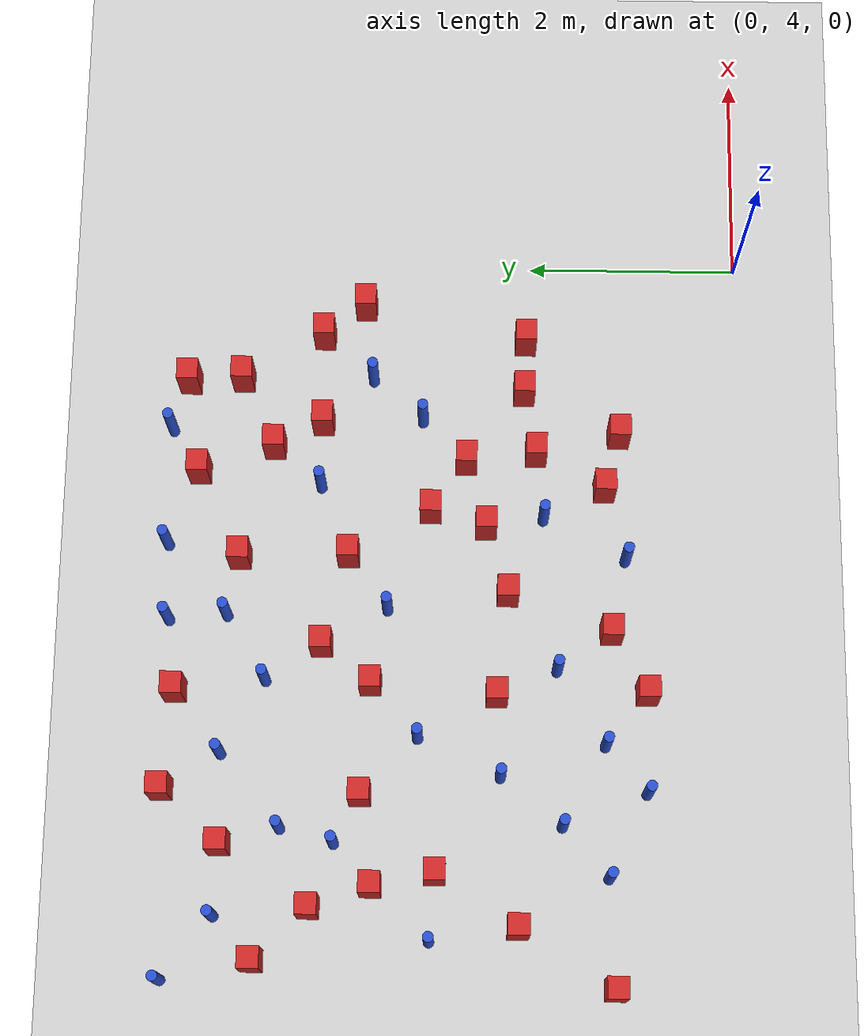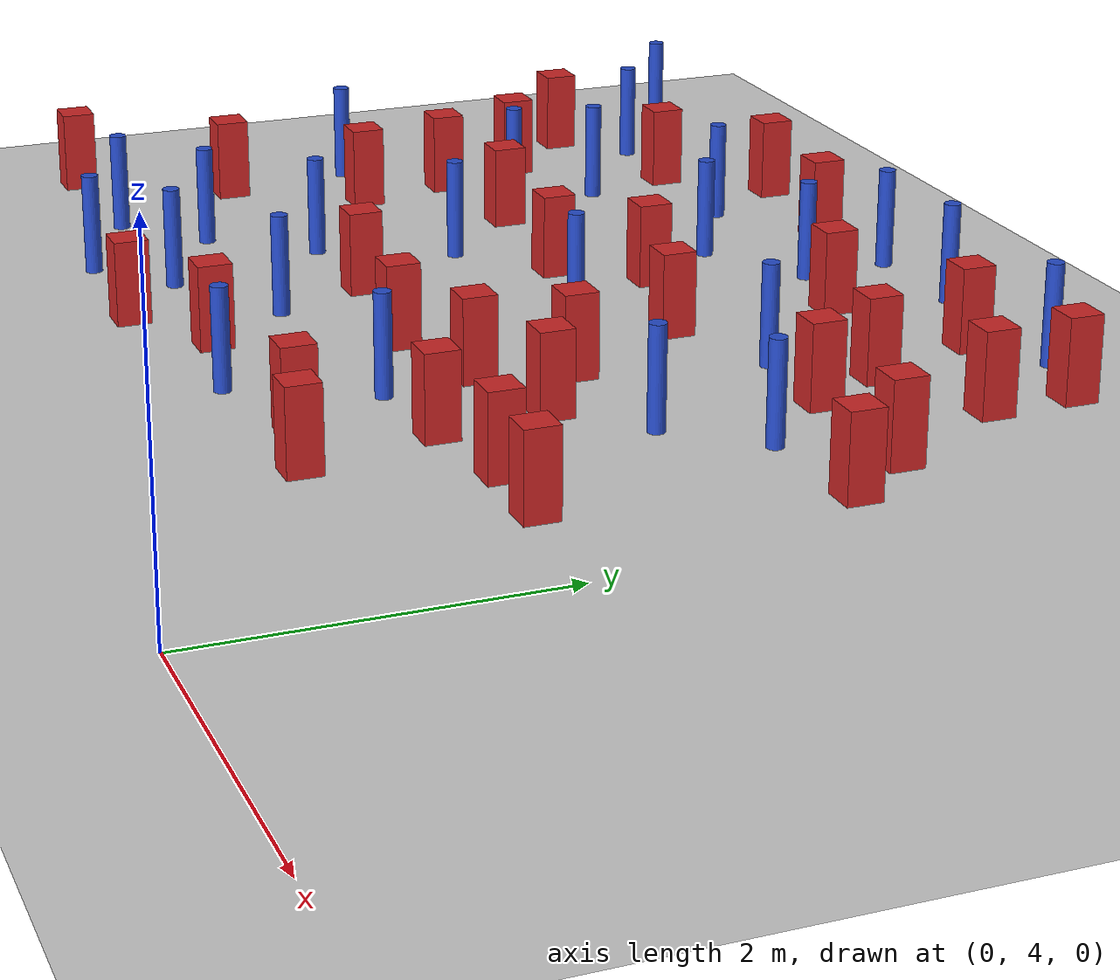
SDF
<sdf version="1.6">
 <world name="default">
  <model name="ground_plane">
   <static>1</static>
   <link name="link">
    <collision name="collision">
     <geometry><plane><normal>0 0 1</normal><size>100 100</size></plane></geometry>
     <surface><friction><ode><mu>100</mu><mu2>50</mu2></ode></friction></surface>
    </collision>
    <visual name="visual">
     <cast_shadows>0</cast_shadows>
     <geometry><plane><normal>0 0 1</normal><size>100 100</size></plane></geometry>
     <material>
      <ambient>1.0 1.0 1.0 1.0</ambient>
      <diffuse>0.8 0.8 0.8 1.0</diffuse>
      <specular>0.01 0.01 0.01 1.000000</specular>
     </material>
    </visual>
   </link>
  </model>
  <model name="pole_obstacle4">
   <static>true</static>
   <pose>-2.95678974515 5.09127910285 -9.47619616065e-06 5.49618799738e-07 2.3631041406e-07 -1.55090534801e-07</pose>
   <link name="link">
    <pose>0 0 0.3 0 -0 0</pose>
    <inertial>
     <mass>1</mass>
     <inertia><ixx>0.145833</ixx><ixy>0</ixy><ixz>0</ixz><iyy>0.145833</iyy><iyz>0</iyz><izz>0.125</izz></inertia>
    </inertial>
    <collision name="collision">
     <geometry><cylinder><radius>0.05</radius><length>.6</length></cylinder></geometry>
    </collision>
    <visual name="visual">
     <geometry><cylinder><radius>0.05</radius><length>.6</length></cylinder></geometry>
     <material>
      <script><name>Gazebo/Blue</name><uri>file://media/materials/scripts/gazebo.material</uri></script>
     </material>
    </visual>
   </link>
  </model>
  <model name="square_post_obstacle3">
   <static>true</static>
   <pose>-3.80728413386 7.94259799385 -6.11067671241e-07 -5.50515727128e-06 -8.79689657224e-07 2.37013304536e-05</pose>
   <link name="link">
    <pose>0 0 0.25 0 -0 0</pose>
    <inertial>
     <mass>100</mass>
     <inertia>
      <ixx>0.166667</ixx>
      <ixy>0</ixy>
      <ixz>0</ixz>
      <iyy>0.166667</iyy>
      <iyz>0</iyz>
      <izz>0.166667</izz>
     </inertia>
    </inertial>
    <collision name="collision"><geometry><box><size>.2 .2 .5</size></box></geometry></collision>
    <visual name="visual">
     <geometry><box><size>.2 .2 .5</size></box></geometry>
     <material>
      <script><name>Gazebo/Red</name><uri>file://media/materials/scripts/gazebo.material</uri></script>
     </material>
    </visual>
   </link>
  </model>
  <model name="square_post_obstacle6">
   <static>true</static>
   <pose>-0.790783355367 6.04530194264 -6.11067671241e-07 -5.50515727128e-06 -8.79689657224e-07 2.37013304536e-05</pose>
   <link name="link">
    <pose>0 0 0.25 0 -0 0</pose>
    <inertial>
     <mass>100</mass>
     <inertia>
      <ixx>0.166667</ixx>
      <ixy>0</ixy>
      <ixz>0</ixz>
      <iyy>0.166667</iyy>
      <iyz>0</iyz>
      <izz>0.166667</izz>
     </inertia>
    </inertial>
    <collision name="collision"><geometry><box><size>.2 .2 .5</size></box></geometry></collision>
    <visual name="visual">
     <geometry><box><size>.2 .2 .5</size></box></geometry>
     <material>
      <script><name>Gazebo/Red</name><uri>file://media/materials/scripts/gazebo.material</uri></script>
     </material>
    </visual>
   </link>
  </model>
  <model name="square_post_obstacle9">
   <static>true</static>
   <pose>-1.1920065152 8.7605117663 -6.11067671241e-07 -5.50515727128e-06 -8.79689657224e-07 2.37013304536e-05</pose>
   <link name="link">
    <pose>0 0 0.25 0 -0 0</pose>
    <inertial>
     <mass>100</mass>
     <inertia>
      <ixx>0.166667</ixx>
      <ixy>0</ixy>
      <ixz>0</ixz>
      <iyy>0.166667</iyy>
      <iyz>0</iyz>
      <izz>0.166667</izz>
     </inertia>
    </inertial>
    <collision name="collision"><geometry><box><size>.2 .2 .5</size></box></geometry></collision>
    <visual name="visual">
     <geometry><box><size>.2 .2 .5</size></box></geometry>
     <material>
      <script><name>Gazebo/Red</name><uri>file://media/materials/scripts/gazebo.material</uri></script>
     </material>
    </visual>
   </link>
  </model>
  <model name="pole_obstacle13">
   <static>true</static>
   <pose>-6.89911833918 9.32958640942 -9.47619616065e-06 5.49618799737e-07 2.36310414065e-07 -1.55090534796e-07</pose>
   <link name="link">
    <pose>0 0 0.3 0 -0 0</pose>
    <inertial>
     <mass>1</mass>
     <inertia><ixx>0.145833</ixx><ixy>0</ixy><ixz>0</ixz><iyy>0.145833</iyy><iyz>0</iyz><izz>0.125</izz></inertia>
    </inertial>
    <collision name="collision">
     <geometry><cylinder><radius>0.05</radius><length>.6</length></cylinder></geometry>
    </collision>
    <visual name="visual">
     <geometry><cylinder><radius>0.05</radius><length>.6</length></cylinder></geometry>
     <material>
      <script><name>Gazebo/Blue</name><uri>file://media/materials/scripts/gazebo.material</uri></script>
     </material>
    </visual>
   </link>
  </model>
  <model name="square_post_obstacle12">
   <static>true</static>
   <pose>-1.2192091242 9.27481414858 -6.11067671241e-07 -5.50515727128e-06 -8.79689657224e-07 2.37013304536e-05</pose>
   <link name="link">
    <pose>0 0 0.25 0 -0 0</pose>
    <inertial>
     <mass>100</mass>
     <inertia>
      <ixx>0.166667</ixx>
      <ixy>0</ixy>
      <ixz>0</ixz>
      <iyy>0.166667</iyy>
      <iyz>0</iyz>
      <izz>0.166667</izz>
     </inertia>
    </inertial>
    <collision name="collision"><geometry><box><size>.2 .2 .5</size></box></geometry></collision>
    <visual name="visual">
     <geometry><box><size>.2 .2 .5</size></box></geometry>
     <material>
      <script><name>Gazebo/Red</name><uri>file://media/materials/scripts/gazebo.material</uri></script>
     </material>
    </visual>
   </link>
  </model>
  <model name="square_post_obstacle13">
   <static>true</static>
   <pose>-1.86878175592 8.4378977359 -6.11067671241e-07 -5.50515727128e-06 -8.79689657224e-07 2.37013304536e-05</pose>
   <link name="link">
    <pose>0 0 0.25 0 -0 0</pose>
    <inertial>
     <mass>100</mass>
     <inertia>
      <ixx>0.166667</ixx>
      <ixy>0</ixy>
      <ixz>0</ixz>
      <iyy>0.166667</iyy>
      <iyz>0</iyz>
      <izz>0.166667</izz>
     </inertia>
    </inertial>
    <collision name="collision"><geometry><box><size>.2 .2 .5</size></box></geometry></collision>
    <visual name="visual">
     <geometry><box><size>.2 .2 .5</size></box></geometry>
     <material>
      <script><name>Gazebo/Red</name><uri>file://media/materials/scripts/gazebo.material</uri></script>
     </material>
    </visual>
   </link>
  </model>
  <model name="pole_obstacle25">
   <static>true</static>
   <pose>-5.52420104333 8.28880063008 -9.47619616065e-06 5.49618799737e-07 2.36310414065e-07 -1.55090534796e-07</pose>
   <link name="link">
    <pose>0 0 0.3 0 -0 0</pose>
    <inertial>
     <mass>1</mass>
     <inertia><ixx>0.145833</ixx><ixy>0</ixy><ixz>0</ixz><iyy>0.145833</iyy><iyz>0</iyz><izz>0.125</izz></inertia>
    </inertial>
    <collision name="collision">
     <geometry><cylinder><radius>0.05</radius><length>.6</length></cylinder></geometry>
    </collision>
    <visual name="visual">
     <geometry><cylinder><radius>0.05</radius><length>.6</length></cylinder></geometry>
     <material>
      <script><name>Gazebo/Blue</name><uri>file://media/materials/scripts/gazebo.material</uri></script>
     </material>
    </visual>
   </link>
  </model>
  <model name="pole_obstacle26">
   <static>true</static>
   <pose>-4.14554308568 8.46213966443 -9.47619616065e-06 5.49618799737e-07 2.36310414065e-07 -1.55090534796e-07</pose>
   <link name="link">
    <pose>0 0 0.3 0 -0 0</pose>
    <inertial>
     <mass>1</mass>
     <inertia><ixx>0.145833</ixx><ixy>0</ixy><ixz>0</ixz><iyy>0.145833</iyy><iyz>0</iyz><izz>0.125</izz></inertia>
    </inertial>
    <collision name="collision">
     <geometry><cylinder><radius>0.05</radius><length>.6</length></cylinder></geometry>
    </collision>
    <visual name="visual">
     <geometry><cylinder><radius>0.05</radius><length>.6</length></cylinder></geometry>
     <material>
      <script><name>Gazebo/Blue</name><uri>file://media/materials/scripts/gazebo.material</uri></script>
     </material>
    </visual>
   </link>
  </model>
  <model name="square_post_obstacle26">
   <static>true</static>
   <pose>-2.9379293906 7.70924358474 -6.11067671241e-07 -5.50515727128e-06 -8.79689657224e-07 2.37013304536e-05</pose>
   <link name="link">
    <pose>0 0 0.25 0 -0 0</pose>
    <inertial>
     <mass>100</mass>
     <inertia>
      <ixx>0.166667</ixx>
      <ixy>0</ixy>
      <ixz>0</ixz>
      <iyy>0.166667</iyy>
      <iyz>0</iyz>
      <izz>0.166667</izz>
     </inertia>
    </inertial>
    <collision name="collision"><geometry><box><size>.2 .2 .5</size></box></geometry></collision>
    <visual name="visual">
     <geometry><box><size>.2 .2 .5</size></box></geometry>
     <material>
      <script><name>Gazebo/Red</name><uri>file://media/materials/scripts/gazebo.material</uri></script>
     </material>
    </visual>
   </link>
  </model>
  <model name="square_post_obstacle29">
   <static>true</static>
   <pose>-2.49597497008 6.94060010637 -6.11067671241e-07 -5.50515727128e-06 -8.79689657224e-07 2.37013304536e-05</pose>
   <link name="link">
    <pose>0 0 0.25 0 -0 0</pose>
    <inertial>
     <mass>100</mass>
     <inertia>
      <ixx>0.166667</ixx>
      <ixy>0</ixy>
      <ixz>0</ixz>
      <iyy>0.166667</iyy>
      <iyz>0</iyz>
      <izz>0.166667</izz>
     </inertia>
    </inertial>
    <collision name="collision"><geometry><box><size>.2 .2 .5</size></box></geometry></collision>
    <visual name="visual">
     <geometry><box><size>.2 .2 .5</size></box></geometry>
     <material>
      <script><name>Gazebo/Red</name><uri>file://media/materials/scripts/gazebo.material</uri></script>
     </material>
    </visual>
   </link>
  </model>
  <model name="square_post_obstacle30">
   <static>true</static>
   <pose>-4.2704340023 6.30288569677 -6.11067671241e-07 -5.50515727128e-06 -8.79689657224e-07 2.37013304536e-05</pose>
   <link name="link">
    <pose>0 0 0.25 0 -0 0</pose>
    <inertial>
     <mass>100</mass>
     <inertia>
      <ixx>0.166667</ixx>
      <ixy>0</ixy>
      <ixz>0</ixz>
      <iyy>0.166667</iyy>
      <iyz>0</iyz>
      <izz>0.166667</izz>
     </inertia>
    </inertial>
    <collision name="collision"><geometry><box><size>.2 .2 .5</size></box></geometry></collision>
    <visual name="visual">
     <geometry><box><size>.2 .2 .5</size></box></geometry>
     <material>
      <script><name>Gazebo/Red</name><uri>file://media/materials/scripts/gazebo.material</uri></script>
     </material>
    </visual>
   </link>
  </model>
  <model name="pole_obstacle45">
   <static>true</static>
   <pose>-2.5598574626 5.86908741282 -9.47619616065e-06 5.49618799738e-07 2.3631041406e-07 -1.55090534801e-07</pose>
   <link name="link">
    <pose>0 0 0.3 0 -0 0</pose>
    <inertial>
     <mass>1</mass>
     <inertia><ixx>0.145833</ixx><ixy>0</ixy><ixz>0</ixz><iyy>0.145833</iyy><iyz>0</iyz><izz>0.125</izz></inertia>
    </inertial>
    <collision name="collision">
     <geometry><cylinder><radius>0.05</radius><length>.6</length></cylinder></geometry>
    </collision>
    <visual name="visual">
     <geometry><cylinder><radius>0.05</radius><length>.6</length></cylinder></geometry>
     <material>
      <script><name>Gazebo/Blue</name><uri>file://media/materials/scripts/gazebo.material</uri></script>
     </material>
    </visual>
   </link>
  </model>
  <model name="pole_obstacle46">
   <static>true</static>
   <pose>-5.948123673 5.26183537463 -9.47619616065e-06 5.49618799737e-07 2.36310414037e-07 -1.55090534814e-07</pose>
   <link name="link">
    <pose>0 0 0.3 0 -0 0</pose>
    <inertial>
     <mass>1</mass>
     <inertia><ixx>0.145833</ixx><ixy>0</ixy><ixz>0</ixz><iyy>0.145833</iyy><iyz>0</iyz><izz>0.125</izz></inertia>
    </inertial>
    <collision name="collision">
     <geometry><cylinder><radius>0.05</radius><length>.6</length></cylinder></geometry>
    </collision>
    <visual name="visual">
     <geometry><cylinder><radius>0.05</radius><length>.6</length></cylinder></geometry>
     <material>
      <script><name>Gazebo/Blue</name><uri>file://media/materials/scripts/gazebo.material</uri></script>
     </material>
    </visual>
   </link>
  </model>
  <model name="square_post_obstacle44">
   <static>true</static>
   <pose>-4.17164430391 7.47755514441 -6.11067671241e-07 -5.50515727128e-06 -8.79689657224e-07 2.37013304536e-05</pose>
   <link name="link">
    <pose>0 0 0.25 0 -0 0</pose>
    <inertial>
     <mass>100</mass>
     <inertia>
      <ixx>0.166667</ixx>
      <ixy>0</ixy>
      <ixz>0</ixz>
      <iyy>0.166667</iyy>
      <iyz>0</iyz>
      <izz>0.166667</izz>
     </inertia>
    </inertial>
    <collision name="collision"><geometry><box><size>.2 .2 .5</size></box></geometry></collision>
    <visual name="visual">
     <geometry><box><size>.2 .2 .5</size></box></geometry>
     <material>
      <script><name>Gazebo/Red</name><uri>file://media/materials/scripts/gazebo.material</uri></script>
     </material>
    </visual>
   </link>
  </model>
  <model name="square_post_obstacle47">
   <static>true</static>
   <pose>-3.66276954024 5.23246581535 -6.11067671241e-07 -5.50515727128e-06 -8.79689657224e-07 2.37013304536e-05</pose>
   <link name="link">
    <pose>0 0 0.25 0 -0 0</pose>
    <inertial>
     <mass>100</mass>
     <inertia>
      <ixx>0.166667</ixx>
      <ixy>0</ixy>
      <ixz>0</ixz>
      <iyy>0.166667</iyy>
      <iyz>0</iyz>
      <izz>0.166667</izz>
     </inertia>
    </inertial>
    <collision name="collision"><geometry><box><size>.2 .2 .5</size></box></geometry></collision>
    <visual name="visual">
     <geometry><box><size>.2 .2 .5</size></box></geometry>
     <material>
      <script><name>Gazebo/Red</name><uri>file://media/materials/scripts/gazebo.material</uri></script>
     </material>
    </visual>
   </link>
  </model>
  <model name="pole_obstacle67">
   <static>true</static>
   <pose>-5.0302400301 6.26273272786 -9.47619616065e-06 5.49618799737e-07 2.36310414037e-07 -1.55090534814e-07</pose>
   <link name="link">
    <pose>0 0 0.3 0 -0 0</pose>
    <inertial>
     <mass>1</mass>
     <inertia><ixx>0.145833</ixx><ixy>0</ixy><ixz>0</ixz><iyy>0.145833</iyy><iyz>0</iyz><izz>0.125</izz></inertia>
    </inertial>
    <collision name="collision">
     <geometry><cylinder><radius>0.05</radius><length>.6</length></cylinder></geometry>
    </collision>
    <visual name="visual">
     <geometry><cylinder><radius>0.05</radius><length>.6</length></cylinder></geometry>
     <material>
      <script><name>Gazebo/Blue</name><uri>file://media/materials/scripts/gazebo.material</uri></script>
     </material>
    </visual>
   </link>
  </model>
  <model name="square_post_obstacle54">
   <static>true</static>
   <pose>-4.24011028568 4.90246162538 -6.11067671241e-07 -5.50515727128e-06 -8.79689657224e-07 2.37013304536e-05</pose>
   <link name="link">
    <pose>0 0 0.25 0 -0 0</pose>
    <inertial>
     <mass>100</mass>
     <inertia>
      <ixx>0.166667</ixx>
      <ixy>0</ixy>
      <ixz>0</ixz>
      <iyy>0.166667</iyy>
      <iyz>0</iyz>
      <izz>0.166667</izz>
     </inertia>
    </inertial>
    <collision name="collision"><geometry><box><size>.2 .2 .5</size></box></geometry></collision>
    <visual name="visual">
     <geometry><box><size>.2 .2 .5</size></box></geometry>
     <material>
      <script><name>Gazebo/Red</name><uri>file://media/materials/scripts/gazebo.material</uri></script>
     </material>
    </visual>
   </link>
  </model>
  <model name="square_post_obstacle55">
   <static>true</static>
   <pose>-3.30167242402 6.20507008597 -6.11067671241e-07 -5.50515727128e-06 -8.79689657224e-07 2.37013304536e-05</pose>
   <link name="link">
    <pose>0 0 0.25 0 -0 0</pose>
    <inertial>
     <mass>100</mass>
     <inertia>
      <ixx>0.166667</ixx>
      <ixy>0</ixy>
      <ixz>0</ixz>
      <iyy>0.166667</iyy>
      <iyz>0</iyz>
      <izz>0.166667</izz>
     </inertia>
    </inertial>
    <collision name="collision"><geometry><box><size>.2 .2 .5</size></box></geometry></collision>
    <visual name="visual">
     <geometry><box><size>.2 .2 .5</size></box></geometry>
     <material>
      <script><name>Gazebo/Red</name><uri>file://media/materials/scripts/gazebo.material</uri></script>
     </material>
    </visual>
   </link>
  </model>
  <model name="pole_obstacle70">
   <static>true</static>
   <pose>-1.58702367289 7.0253785413 -9.47619616065e-06 5.49618799737e-07 2.36310414061e-07 -1.550905348e-07</pose>
   <link name="link">
    <pose>0 0 0.3 0 -0 0</pose>
    <inertial>
     <mass>1</mass>
     <inertia><ixx>0.145833</ixx><ixy>0</ixy><ixz>0</ixz><iyy>0.145833</iyy><iyz>0</iyz><izz>0.125</izz></inertia>
    </inertial>
    <collision name="collision">
     <geometry><cylinder><radius>0.05</radius><length>.6</length></cylinder></geometry>
    </collision>
    <visual name="visual">
     <geometry><cylinder><radius>0.05</radius><length>.6</length></cylinder></geometry>
     <material>
      <script><name>Gazebo/Blue</name><uri>file://media/materials/scripts/gazebo.material</uri></script>
     </material>
    </visual>
   </link>
  </model>
  <model name="square_post_obstacle62">
   <static>true</static>
   <pose>-6.72022329047 8.50379124047 -6.11067671241e-07 -5.50515727128e-06 -8.79689657224e-07 2.37013304536e-05</pose>
   <link name="link">
    <pose>0 0 0.25 0 -0 0</pose>
    <inertial>
     <mass>100</mass>
     <inertia>
      <ixx>0.166667</ixx>
      <ixy>0</ixy>
      <ixz>0</ixz>
      <iyy>0.166667</iyy>
      <iyz>0</iyz>
      <izz>0.166667</izz>
     </inertia>
    </inertial>
    <collision name="collision"><geometry><box><size>.2 .2 .5</size></box></geometry></collision>
    <visual name="visual">
     <geometry><box><size>.2 .2 .5</size></box></geometry>
     <material>
      <script><name>Gazebo/Red</name><uri>file://media/materials/scripts/gazebo.material</uri></script>
     </material>
    </visual>
   </link>
  </model>
  <model name="pole_obstacle77">
   <static>true</static>
   <pose>-5.1717194851 4.90552400856 -9.47619616065e-06 5.49618799737e-07 2.36310414037e-07 -1.55090534814e-07</pose>
   <link name="link">
    <pose>0 0 0.3 0 -0 0</pose>
    <inertial>
     <mass>1</mass>
     <inertia><ixx>0.145833</ixx><ixy>0</ixy><ixz>0</ixz><iyy>0.145833</iyy><iyz>0</iyz><izz>0.125</izz></inertia>
    </inertial>
    <collision name="collision">
     <geometry><cylinder><radius>0.05</radius><length>.6</length></cylinder></geometry>
    </collision>
    <visual name="visual">
     <geometry><cylinder><radius>0.05</radius><length>.6</length></cylinder></geometry>
     <material>
      <script><name>Gazebo/Blue</name><uri>file://media/materials/scripts/gazebo.material</uri></script>
     </material>
    </visual>
   </link>
  </model>
  <model name="square_post_obstacle71">
   <static>true</static>
   <pose>-0.749302874879 7.98670595405 -6.11067671241e-07 -5.50515727128e-06 -8.79689657224e-07 2.37013304536e-05</pose>
   <link name="link">
    <pose>0 0 0.25 0 -0 0</pose>
    <inertial>
     <mass>100</mass>
     <inertia>
      <ixx>0.166667</ixx>
      <ixy>0</ixy>
      <ixz>0</ixz>
      <iyy>0.166667</iyy>
      <iyz>0</iyz>
      <izz>0.166667</izz>
     </inertia>
    </inertial>
    <collision name="collision"><geometry><box><size>.2 .2 .5</size></box></geometry></collision>
    <visual name="visual">
     <geometry><box><size>.2 .2 .5</size></box></geometry>
     <material>
      <script><name>Gazebo/Red</name><uri>file://media/materials/scripts/gazebo.material</uri></script>
     </material>
    </visual>
   </link>
  </model>
  <model name="pole_obstacle85">
   <static>true</static>
   <pose>-4.02636909091 5.73742661564 -9.47619616065e-06 5.49618799737e-07 2.36310414031e-07 -1.55090534817e-07</pose>
   <link name="link">
    <pose>0 0 0.3 0 -0 0</pose>
    <inertial>
     <mass>1</mass>
     <inertia><ixx>0.145833</ixx><ixy>0</ixy><ixz>0</ixz><iyy>0.145833</iyy><iyz>0</iyz><izz>0.125</izz></inertia>
    </inertial>
    <collision name="collision">
     <geometry><cylinder><radius>0.05</radius><length>.6</length></cylinder></geometry>
    </collision>
    <visual name="visual">
     <geometry><cylinder><radius>0.05</radius><length>.6</length></cylinder></geometry>
     <material>
      <script><name>Gazebo/Blue</name><uri>file://media/materials/scripts/gazebo.material</uri></script>
     </material>
    </visual>
   </link>
  </model>
  <model name="square_post_obstacle73">
   <static>true</static>
   <pose>-5.20818254517 7.55639027175 -6.11067671241e-07 -5.50515727128e-06 -8.79689657224e-07 2.37013304536e-05</pose>
   <link name="link">
    <pose>0 0 0.25 0 -0 0</pose>
    <inertial>
     <mass>100</mass>
     <inertia>
      <ixx>0.166667</ixx>
      <ixy>0</ixy>
      <ixz>0</ixz>
      <iyy>0.166667</iyy>
      <iyz>0</iyz>
      <izz>0.166667</izz>
     </inertia>
    </inertial>
    <collision name="collision"><geometry><box><size>.2 .2 .5</size></box></geometry></collision>
    <visual name="visual">
     <geometry><box><size>.2 .2 .5</size></box></geometry>
     <material>
      <script><name>Gazebo/Red</name><uri>file://media/materials/scripts/gazebo.material</uri></script>
     </material>
    </visual>
   </link>
  </model>
  <model name="pole_obstacle88">
   <static>true</static>
   <pose>-4.73186308262 5.28888205395 -9.47619616065e-06 5.49618799737e-07 2.36310414037e-07 -1.55090534814e-07</pose>
   <link name="link">
    <pose>0 0 0.3 0 -0 0</pose>
    <inertial>
     <mass>1</mass>
     <inertia><ixx>0.145833</ixx><ixy>0</ixy><ixz>0</ixz><iyy>0.145833</iyy><iyz>0</iyz><izz>0.125</izz></inertia>
    </inertial>
    <collision name="collision">
     <geometry><cylinder><radius>0.05</radius><length>.6</length></cylinder></geometry>
    </collision>
    <visual name="visual">
     <geometry><cylinder><radius>0.05</radius><length>.6</length></cylinder></geometry>
     <material>
      <script><name>Gazebo/Blue</name><uri>file://media/materials/scripts/gazebo.material</uri></script>
     </material>
    </visual>
   </link>
  </model>
  <model name="square_post_obstacle75">
   <static>true</static>
   <pose>-4.25066289263 9.29894668579 -6.11067671241e-07 -5.50515727128e-06 -8.79689657224e-07 2.37013304536e-05</pose>
   <link name="link">
    <pose>0 0 0.25 0 -0 0</pose>
    <inertial>
     <mass>100</mass>
     <inertia>
      <ixx>0.166667</ixx>
      <ixy>0</ixy>
      <ixz>0</ixz>
      <iyy>0.166667</iyy>
      <iyz>0</iyz>
      <izz>0.166667</izz>
     </inertia>
    </inertial>
    <collision name="collision"><geometry><box><size>.2 .2 .5</size></box></geometry></collision>
    <visual name="visual">
     <geometry><box><size>.2 .2 .5</size></box></geometry>
     <material>
      <script><name>Gazebo/Red</name><uri>file://media/materials/scripts/gazebo.material</uri></script>
     </material>
    </visual>
   </link>
  </model>
  <model name="square_post_obstacle85">
   <static>true</static>
   <pose>-6.40384454887 6.09656698712 -6.11067671241e-07 -5.50515727128e-06 -8.79689657224e-07 2.37013304536e-05</pose>
   <link name="link">
    <pose>0 0 0.25 0 -0 0</pose>
    <inertial>
     <mass>100</mass>
     <inertia>
      <ixx>0.166667</ixx>
      <ixy>0</ixy>
      <ixz>0</ixz>
      <iyy>0.166667</iyy>
      <iyz>0</iyz>
      <izz>0.166667</izz>
     </inertia>
    </inertial>
    <collision name="collision"><geometry><box><size>.2 .2 .5</size></box></geometry></collision>
    <visual name="visual">
     <geometry><box><size>.2 .2 .5</size></box></geometry>
     <material>
      <script><name>Gazebo/Red</name><uri>file://media/materials/scripts/gazebo.material</uri></script>
     </material>
    </visual>
   </link>
  </model>
  <model name="pole_obstacle98">
   <static>true</static>
   <pose>-4.83721915752 8.85783787546 -9.47619616065e-06 5.49618799737e-07 2.36310414065e-07 -1.55090534796e-07</pose>
   <link name="link">
    <pose>0 0 0.3 0 -0 0</pose>
    <inertial>
     <mass>1</mass>
     <inertia><ixx>0.145833</ixx><ixy>0</ixy><ixz>0</ixz><iyy>0.145833</iyy><iyz>0</iyz><izz>0.125</izz></inertia>
    </inertial>
    <collision name="collision">
     <geometry><cylinder><radius>0.05</radius><length>.6</length></cylinder></geometry>
    </collision>
    <visual name="visual">
     <geometry><cylinder><radius>0.05</radius><length>.6</length></cylinder></geometry>
     <material>
      <script><name>Gazebo/Blue</name><uri>file://media/materials/scripts/gazebo.material</uri></script>
     </material>
    </visual>
   </link>
  </model>
  <model name="square_post_obstacle93">
   <static>true</static>
   <pose>-2.96652013217 8.73398334853 -6.11067671241e-07 -5.50515727128e-06 -8.79689657224e-07 2.37013304536e-05</pose>
   <link name="link">
    <pose>0 0 0.25 0 -0 0</pose>
    <inertial>
     <mass>100</mass>
     <inertia>
      <ixx>0.166667</ixx>
      <ixy>0</ixy>
      <ixz>0</ixz>
      <iyy>0.166667</iyy>
      <iyz>0</iyz>
      <izz>0.166667</izz>
     </inertia>
    </inertial>
    <collision name="collision"><geometry><box><size>.2 .2 .5</size></box></geometry></collision>
    <visual name="visual">
     <geometry><box><size>.2 .2 .5</size></box></geometry>
     <material>
      <script><name>Gazebo/Red</name><uri>file://media/materials/scripts/gazebo.material</uri></script>
     </material>
    </visual>
   </link>
  </model>
  <model name="pole_obstacle105">
   <static>true</static>
   <pose>-3.52545761373 8.84153467018 -9.4761961606e-06 5.49618799729e-07 2.36310414e-07 -1.55090534824e-07</pose>
   <link name="link">
    <pose>0 0 0.3 0 -0 0</pose>
    <inertial>
     <mass>1</mass>
     <inertia><ixx>0.145833</ixx><ixy>0</ixy><ixz>0</ixz><iyy>0.145833</iyy><iyz>0</iyz><izz>0.125</izz></inertia>
    </inertial>
    <collision name="collision">
     <geometry><cylinder><radius>0.05</radius><length>.6</length></cylinder></geometry>
    </collision>
    <visual name="visual">
     <geometry><cylinder><radius>0.05</radius><length>.6</length></cylinder></geometry>
     <material>
      <script><name>Gazebo/Blue</name><uri>file://media/materials/scripts/gazebo.material</uri></script>
     </material>
    </visual>
   </link>
  </model>
  <model name="square_post_obstacle126">
   <static>true</static>
   <pose>-5.67208714138 8.83822857951 -6.11067671241e-07 -5.50515727128e-06 -8.79689657224e-07 2.37013304536e-05</pose>
   <link name="link">
    <pose>0 0 0.25 0 -0 0</pose>
    <inertial>
     <mass>100</mass>
     <inertia>
      <ixx>0.166667</ixx>
      <ixy>0</ixy>
      <ixz>0</ixz>
      <iyy>0.166667</iyy>
      <iyz>0</iyz>
      <izz>0.166667</izz>
     </inertia>
    </inertial>
    <collision name="collision"><geometry><box><size>.2 .2 .5</size></box></geometry></collision>
    <visual name="visual">
     <geometry><box><size>.2 .2 .5</size></box></geometry>
     <material>
      <script><name>Gazebo/Red</name><uri>file://media/materials/scripts/gazebo.material</uri></script>
     </material>
    </visual>
   </link>
  </model>
  <model name="square_post_obstacle131">
   <static>true</static>
   <pose>-1.30971597523 6.05829694783 -6.11067671241e-07 -5.50515727128e-06 -8.79689657224e-07 2.37013304536e-05</pose>
   <link name="link">
    <pose>0 0 0.25 0 -0 0</pose>
    <inertial>
     <mass>100</mass>
     <inertia>
      <ixx>0.166667</ixx>
      <ixy>0</ixy>
      <ixz>0</ixz>
      <iyy>0.166667</iyy>
      <iyz>0</iyz>
      <izz>0.166667</izz>
     </inertia>
    </inertial>
    <collision name="collision"><geometry><box><size>.2 .2 .5</size></box></geometry></collision>
    <visual name="visual">
     <geometry><box><size>.2 .2 .5</size></box></geometry>
     <material>
      <script><name>Gazebo/Red</name><uri>file://media/materials/scripts/gazebo.material</uri></script>
     </material>
    </visual>
   </link>
  </model>
  <model name="pole_obstacle141">
   <static>true</static>
   <pose>-6.53538616235 6.90499154375 -9.47619616065e-06 5.49618799737e-07 2.36310414037e-07 -1.55090534814e-07</pose>
   <link name="link">
    <pose>0 0 0.3 0 -0 0</pose>
    <inertial>
     <mass>1</mass>
     <inertia><ixx>0.145833</ixx><ixy>0</ixy><ixz>0</ixz><iyy>0.145833</iyy><iyz>0</iyz><izz>0.125</izz></inertia>
    </inertial>
    <collision name="collision">
     <geometry><cylinder><radius>0.05</radius><length>.6</length></cylinder></geometry>
    </collision>
    <visual name="visual">
     <geometry><cylinder><radius>0.05</radius><length>.6</length></cylinder></geometry>
     <material>
      <script><name>Gazebo/Blue</name><uri>file://media/materials/scripts/gazebo.material</uri></script>
     </material>
    </visual>
   </link>
  </model>
  <model name="pole_obstacle148">
   <static>true</static>
   <pose>-3.45529429385 7.33300449355 -9.47619616065e-06 5.49618799738e-07 2.3631041406e-07 -1.55090534801e-07</pose>
   <link name="link">
    <pose>0 0 0.3 0 -0 0</pose>
    <inertial>
     <mass>1</mass>
     <inertia><ixx>0.145833</ixx><ixy>0</ixy><ixz>0</ixz><iyy>0.145833</iyy><iyz>0</iyz><izz>0.125</izz></inertia>
    </inertial>
    <collision name="collision">
     <geometry><cylinder><radius>0.05</radius><length>.6</length></cylinder></geometry>
    </collision>
    <visual name="visual">
     <geometry><cylinder><radius>0.05</radius><length>.6</length></cylinder></geometry>
     <material>
      <script><name>Gazebo/Blue</name><uri>file://media/materials/scripts/gazebo.material</uri></script>
     </material>
    </visual>
   </link>
  </model>
  <model name="square_post_obstacle149">
   <static>true</static>
   <pose>-5.92113306008 6.85758101392 -6.11067671241e-07 -5.50515727128e-06 -8.79689657224e-07 2.37013304536e-05</pose>
   <link name="link">
    <pose>0 0 0.25 0 -0 0</pose>
    <inertial>
     <mass>100</mass>
     <inertia>
      <ixx>0.166667</ixx>
      <ixy>0</ixy>
      <ixz>0</ixz>
      <iyy>0.166667</iyy>
      <iyz>0</iyz>
      <izz>0.166667</izz>
     </inertia>
    </inertial>
    <collision name="collision"><geometry><box><size>.2 .2 .5</size></box></geometry></collision>
    <visual name="visual">
     <geometry><box><size>.2 .2 .5</size></box></geometry>
     <material>
      <script><name>Gazebo/Red</name><uri>file://media/materials/scripts/gazebo.material</uri></script>
     </material>
    </visual>
   </link>
  </model>
  <model name="square_post_obstacle152">
   <static>true</static>
   <pose>-2.26918869211 5.29172515942 -6.11067671241e-07 -5.50515727128e-06 -8.79689657224e-07 2.37013304536e-05</pose>
   <link name="link">
    <pose>0 0 0.25 0 -0 0</pose>
    <inertial>
     <mass>100</mass>
     <inertia>
      <ixx>0.166667</ixx>
      <ixy>0</ixy>
      <ixz>0</ixz>
      <iyy>0.166667</iyy>
      <iyz>0</iyz>
      <izz>0.166667</izz>
     </inertia>
    </inertial>
    <collision name="collision"><geometry><box><size>.2 .2 .5</size></box></geometry></collision>
    <visual name="visual">
     <geometry><box><size>.2 .2 .5</size></box></geometry>
     <material>
      <script><name>Gazebo/Red</name><uri>file://media/materials/scripts/gazebo.material</uri></script>
     </material>
    </visual>
   </link>
  </model>
  <model name="square_post_obstacle159">
   <static>true</static>
   <pose>-1.73235446123 5.15240734635 -6.11067671241e-07 -5.50515727128e-06 -8.79689657224e-07 2.37013304536e-05</pose>
   <link name="link">
    <pose>0 0 0.25 0 -0 0</pose>
    <inertial>
     <mass>100</mass>
     <inertia>
      <ixx>0.166667</ixx>
      <ixy>0</ixy>
      <ixz>0</ixz>
      <iyy>0.166667</iyy>
      <iyz>0</iyz>
      <izz>0.166667</izz>
     </inertia>
    </inertial>
    <collision name="collision"><geometry><box><size>.2 .2 .5</size></box></geometry></collision>
    <visual name="visual">
     <geometry><box><size>.2 .2 .5</size></box></geometry>
     <material>
      <script><name>Gazebo/Red</name><uri>file://media/materials/scripts/gazebo.material</uri></script>
     </material>
    </visual>
   </link>
  </model>
  <model name="pole_obstacle168">
   <static>true</static>
   <pose>-2.84136527079 9.42373996783 -9.4761961606e-06 5.49618799729e-07 2.36310414e-07 -1.55090534824e-07</pose>
   <link name="link">
    <pose>0 0 0.3 0 -0 0</pose>
    <inertial>
     <mass>1</mass>
     <inertia><ixx>0.145833</ixx><ixy>0</ixy><ixz>0</ixz><iyy>0.145833</iyy><iyz>0</iyz><izz>0.125</izz></inertia>
    </inertial>
    <collision name="collision">
     <geometry><cylinder><radius>0.05</radius><length>.6</length></cylinder></geometry>
    </collision>
    <visual name="visual">
     <geometry><cylinder><radius>0.05</radius><length>.6</length></cylinder></geometry>
     <material>
      <script><name>Gazebo/Blue</name><uri>file://media/materials/scripts/gazebo.material</uri></script>
     </material>
    </visual>
   </link>
  </model>
  <model name="square_post_obstacle168">
   <static>true</static>
   <pose>-6.04182691714 7.44375936845 -6.11067671241e-07 -5.50515727128e-06 -8.79689657224e-07 2.37013304536e-05</pose>
   <link name="link">
    <pose>0 0 0.25 0 -0 0</pose>
    <inertial>
     <mass>100</mass>
     <inertia>
      <ixx>0.166667</ixx>
      <ixy>0</ixy>
      <ixz>0</ixz>
      <iyy>0.166667</iyy>
      <iyz>0</iyz>
      <izz>0.166667</izz>
     </inertia>
    </inertial>
    <collision name="collision"><geometry><box><size>.2 .2 .5</size></box></geometry></collision>
    <visual name="visual">
     <geometry><box><size>.2 .2 .5</size></box></geometry>
     <material>
      <script><name>Gazebo/Red</name><uri>file://media/materials/scripts/gazebo.material</uri></script>
     </material>
    </visual>
   </link>
  </model>
  <model name="pole_obstacle173">
   <static>true</static>
   <pose>-1.70341243693 9.42525031591 -9.47619616065e-06 5.49618799737e-07 2.36310414046e-07 -1.55090534809e-07</pose>
   <link name="link">
    <pose>0 0 0.3 0 -0 0</pose>
    <inertial>
     <mass>1</mass>
     <inertia><ixx>0.145833</ixx><ixy>0</ixy><ixz>0</ixz><iyy>0.145833</iyy><iyz>0</iyz><izz>0.125</izz></inertia>
    </inertial>
    <collision name="collision">
     <geometry><cylinder><radius>0.05</radius><length>.6</length></cylinder></geometry>
    </collision>
    <visual name="visual">
     <geometry><cylinder><radius>0.05</radius><length>.6</length></cylinder></geometry>
     <material>
      <script><name>Gazebo/Blue</name><uri>file://media/materials/scripts/gazebo.material</uri></script>
     </material>
    </visual>
   </link>
  </model>
  <model name="pole_obstacle176">
   <static>true</static>
   <pose>-3.57125808558 9.3886093638 -9.4761961606e-06 5.49618799729e-07 2.36310414e-07 -1.55090534824e-07</pose>
   <link name="link">
    <pose>0 0 0.3 0 -0 0</pose>
    <inertial>
     <mass>1</mass>
     <inertia><ixx>0.145833</ixx><ixy>0</ixy><ixz>0</ixz><iyy>0.145833</iyy><iyz>0</iyz><izz>0.125</izz></inertia>
    </inertial>
    <collision name="collision">
     <geometry><cylinder><radius>0.05</radius><length>.6</length></cylinder></geometry>
    </collision>
    <visual name="visual">
     <geometry><cylinder><radius>0.05</radius><length>.6</length></cylinder></geometry>
     <material>
      <script><name>Gazebo/Blue</name><uri>file://media/materials/scripts/gazebo.material</uri></script>
     </material>
    </visual>
   </link>
  </model>
  <model name="square_post_obstacle183">
   <static>true</static>
   <pose>-2.12445000089 9.14708520428 -6.11067671241e-07 -5.50515727128e-06 -8.79689657224e-07 2.37013304536e-05</pose>
   <link name="link">
    <pose>0 0 0.25 0 -0 0</pose>
    <inertial>
     <mass>100</mass>
     <inertia>
      <ixx>0.166667</ixx>
      <ixy>0</ixy>
      <ixz>0</ixz>
      <iyy>0.166667</iyy>
      <iyz>0</iyz>
      <izz>0.166667</izz>
     </inertia>
    </inertial>
    <collision name="collision"><geometry><box><size>.2 .2 .5</size></box></geometry></collision>
    <visual name="visual">
     <geometry><box><size>.2 .2 .5</size></box></geometry>
     <material>
      <script><name>Gazebo/Red</name><uri>file://media/materials/scripts/gazebo.material</uri></script>
     </material>
    </visual>
   </link>
  </model>
  <model name="square_post_obstacle187">
   <static>true</static>
   <pose>-0.443265280389 7.5909883616 -6.11067671241e-07 -5.50515727128e-06 -8.79689657224e-07 2.37013304536e-05</pose>
   <link name="link">
    <pose>0 0 0.25 0 -0 0</pose>
    <inertial>
     <mass>100</mass>
     <inertia>
      <ixx>0.166667</ixx>
      <ixy>0</ixy>
      <ixz>0</ixz>
      <iyy>0.166667</iyy>
      <iyz>0</iyz>
      <izz>0.166667</izz>
     </inertia>
    </inertial>
    <collision name="collision"><geometry><box><size>.2 .2 .5</size></box></geometry></collision>
    <visual name="visual">
     <geometry><box><size>.2 .2 .5</size></box></geometry>
     <material>
      <script><name>Gazebo/Red</name><uri>file://media/materials/scripts/gazebo.material</uri></script>
     </material>
    </visual>
   </link>
  </model>
  <model name="pole_obstacle187">
   <static>true</static>
   <pose>-5.65548887516 7.79090818194 -9.47619616065e-06 5.49618799737e-07 2.36310414037e-07 -1.55090534814e-07</pose>
   <link name="link">
    <pose>0 0 0.3 0 -0 0</pose>
    <inertial>
     <mass>1</mass>
     <inertia><ixx>0.145833</ixx><ixy>0</ixy><ixz>0</ixz><iyy>0.145833</iyy><iyz>0</iyz><izz>0.125</izz></inertia>
    </inertial>
    <collision name="collision">
     <geometry><cylinder><radius>0.05</radius><length>.6</length></cylinder></geometry>
    </collision>
    <visual name="visual">
     <geometry><cylinder><radius>0.05</radius><length>.6</length></cylinder></geometry>
     <material>
      <script><name>Gazebo/Blue</name><uri>file://media/materials/scripts/gazebo.material</uri></script>
     </material>
    </visual>
   </link>
  </model>
  <model name="square_post_obstacle194">
   <static>true</static>
   <pose>-1.62564459942 7.97905977488 -6.11067671241e-07 -5.50515727128e-06 -8.79689657224e-07 2.37013304536e-05</pose>
   <link name="link">
    <pose>0 0 0.25 0 -0 0</pose>
    <inertial>
     <mass>100</mass>
     <inertia>
      <ixx>0.166667</ixx>
      <ixy>0</ixy>
      <ixz>0</ixz>
      <iyy>0.166667</iyy>
      <iyz>0</iyz>
      <izz>0.166667</izz>
     </inertia>
    </inertial>
    <collision name="collision"><geometry><box><size>.2 .2 .5</size></box></geometry></collision>
    <visual name="visual">
     <geometry><box><size>.2 .2 .5</size></box></geometry>
     <material>
      <script><name>Gazebo/Red</name><uri>file://media/materials/scripts/gazebo.material</uri></script>
     </material>
    </visual>
   </link>
  </model>
  <model name="square_post_obstacle195">
   <static>true</static>
   <pose>-1.92383098696 5.94418052121 -6.11067671241e-07 -5.50515727128e-06 -8.79689657224e-07 2.37013304536e-05</pose>
   <link name="link">
    <pose>0 0 0.25 0 -0 0</pose>
    <inertial>
     <mass>100</mass>
     <inertia>
      <ixx>0.166667</ixx>
      <ixy>0</ixy>
      <ixz>0</ixz>
      <iyy>0.166667</iyy>
      <iyz>0</iyz>
      <izz>0.166667</izz>
     </inertia>
    </inertial>
    <collision name="collision"><geometry><box><size>.2 .2 .5</size></box></geometry></collision>
    <visual name="visual">
     <geometry><box><size>.2 .2 .5</size></box></geometry>
     <material>
      <script><name>Gazebo/Red</name><uri>file://media/materials/scripts/gazebo.material</uri></script>
     </material>
    </visual>
   </link>
  </model>
  <model name="square_post_obstacle200">
   <static>true</static>
   <pose>-6.94666529011 5.21274066155 -6.11067671241e-07 -5.50515727128e-06 -8.79689657224e-07 2.37013304536e-05</pose>
   <link name="link">
    <pose>0 0 0.25 0 -0 0</pose>
    <inertial>
     <mass>100</mass>
     <inertia>
      <ixx>0.166667</ixx>
      <ixy>0</ixy>
      <ixz>0</ixz>
      <iyy>0.166667</iyy>
      <iyz>0</iyz>
      <izz>0.166667</izz>
     </inertia>
    </inertial>
    <collision name="collision"><geometry><box><size>.2 .2 .5</size></box></geometry></collision>
    <visual name="visual">
     <geometry><box><size>.2 .2 .5</size></box></geometry>
     <material>
      <script><name>Gazebo/Red</name><uri>file://media/materials/scripts/gazebo.material</uri></script>
     </material>
    </visual>
   </link>
  </model>
  <model name="square_post_obstacle201">
   <static>true</static>
   <pose>-5.17066218779 9.38843543765 -6.11067671241e-07 -5.50515727128e-06 -8.79689657224e-07 2.37013304536e-05</pose>
   <link name="link">
    <pose>0 0 0.25 0 -0 0</pose>
    <inertial>
     <mass>100</mass>
     <inertia>
      <ixx>0.166667</ixx>
      <ixy>0</ixy>
      <ixz>0</ixz>
      <iyy>0.166667</iyy>
      <iyz>0</iyz>
      <izz>0.166667</izz>
     </inertia>
    </inertial>
    <collision name="collision"><geometry><box><size>.2 .2 .5</size></box></geometry></collision>
    <visual name="visual">
     <geometry><box><size>.2 .2 .5</size></box></geometry>
     <material>
      <script><name>Gazebo/Red</name><uri>file://media/materials/scripts/gazebo.material</uri></script>
     </material>
    </visual>
   </link>
  </model>
  <model name="pole_obstacle191">
   <static>true</static>
   <pose>-2.25584471546 7.98653600868 -9.47619616065e-06 5.49618799737e-07 2.3631041406e-07 -1.55090534802e-07</pose>
   <link name="link">
    <pose>0 0 0.3 0 -0 0</pose>
    <inertial>
     <mass>1</mass>
     <inertia><ixx>0.145833</ixx><ixy>0</ixy><ixz>0</ixz><iyy>0.145833</iyy><iyz>0</iyz><izz>0.125</izz></inertia>
    </inertial>
    <collision name="collision">
     <geometry><cylinder><radius>0.05</radius><length>.6</length></cylinder></geometry>
    </collision>
    <visual name="visual">
     <geometry><cylinder><radius>0.05</radius><length>.6</length></cylinder></geometry>
     <material>
      <script><name>Gazebo/Blue</name><uri>file://media/materials/scripts/gazebo.material</uri></script>
     </material>
    </visual>
   </link>
  </model>
  <model name="pole_obstacle192">
   <static>true</static>
   <pose>-1.1771848997 7.50755135502 -9.47619616065e-06 5.49618799737e-07 2.36310414061e-07 -1.550905348e-07</pose>
   <link name="link">
    <pose>0 0 0.3 0 -0 0</pose>
    <inertial>
     <mass>1</mass>
     <inertia><ixx>0.145833</ixx><ixy>0</ixy><ixz>0</ixz><iyy>0.145833</iyy><iyz>0</iyz><izz>0.125</izz></inertia>
    </inertial>
    <collision name="collision">
     <geometry><cylinder><radius>0.05</radius><length>.6</length></cylinder></geometry>
    </collision>
    <visual name="visual">
     <geometry><cylinder><radius>0.05</radius><length>.6</length></cylinder></geometry>
     <material>
      <script><name>Gazebo/Blue</name><uri>file://media/materials/scripts/gazebo.material</uri></script>
     </material>
    </visual>
   </link>
  </model>
  <model name="square_post_obstacle203">
   <static>true</static>
   <pose>-2.64846750056 6.41425110673 -6.11067671241e-07 -5.50515727128e-06 -8.79689657224e-07 2.37013304536e-05</pose>
   <link name="link">
    <pose>0 0 0.25 0 -0 0</pose>
    <inertial>
     <mass>100</mass>
     <inertia>
      <ixx>0.166667</ixx>
      <ixy>0</ixy>
      <ixz>0</ixz>
      <iyy>0.166667</iyy>
      <iyz>0</iyz>
      <izz>0.166667</izz>
     </inertia>
    </inertial>
    <collision name="collision"><geometry><box><size>.2 .2 .5</size></box></geometry></collision>
    <visual name="visual">
     <geometry><box><size>.2 .2 .5</size></box></geometry>
     <material>
      <script><name>Gazebo/Red</name><uri>file://media/materials/scripts/gazebo.material</uri></script>
     </material>
    </visual>
   </link>
  </model>
  <model name="pole_obstacle195">
   <static>true</static>
   <pose>-4.67356878926 7.03341662535 -9.47619616065e-06 5.49618799737e-07 2.36310414037e-07 -1.55090534814e-07</pose>
   <link name="link">
    <pose>0 0 0.3 0 -0 0</pose>
    <inertial>
     <mass>1</mass>
     <inertia><ixx>0.145833</ixx><ixy>0</ixy><ixz>0</ixz><iyy>0.145833</iyy><iyz>0</iyz><izz>0.125</izz></inertia>
    </inertial>
    <collision name="collision">
     <geometry><cylinder><radius>0.05</radius><length>.6</length></cylinder></geometry>
    </collision>
    <visual name="visual">
     <geometry><cylinder><radius>0.05</radius><length>.6</length></cylinder></geometry>
     <material>
      <script><name>Gazebo/Blue</name><uri>file://media/materials/scripts/gazebo.material</uri></script>
     </material>
    </visual>
   </link>
  </model>
  <model name="pole_obstacle200">
   <static>true</static>
   <pose>-6.32542066807 8.8715446458 -9.47619616065e-06 5.49618799737e-07 2.36310414065e-07 -1.55090534796e-07</pose>
   <link name="link">
    <pose>0 0 0.3 0 -0 0</pose>
    <inertial>
     <mass>1</mass>
     <inertia><ixx>0.145833</ixx><ixy>0</ixy><ixz>0</ixz><iyy>0.145833</iyy><iyz>0</iyz><izz>0.125</izz></inertia>
    </inertial>
    <collision name="collision">
     <geometry><cylinder><radius>0.05</radius><length>.6</length></cylinder></geometry>
    </collision>
    <visual name="visual">
     <geometry><cylinder><radius>0.05</radius><length>.6</length></cylinder></geometry>
     <material>
      <script><name>Gazebo/Blue</name><uri>file://media/materials/scripts/gazebo.material</uri></script>
     </material>
    </visual>
   </link>
  </model>
  <model name="square_post_obstacle207">
   <static>true</static>
   <pose>-6.24041707001 8.00501725582 -6.11067671241e-07 -5.50515727128e-06 -8.79689657224e-07 2.37013304536e-05</pose>
   <link name="link">
    <pose>0 0 0.25 0 -0 0</pose>
    <inertial>
     <mass>100</mass>
     <inertia>
      <ixx>0.166667</ixx>
      <ixy>0</ixy>
      <ixz>0</ixz>
      <iyy>0.166667</iyy>
      <iyz>0</iyz>
      <izz>0.166667</izz>
     </inertia>
    </inertial>
    <collision name="collision"><geometry><box><size>.2 .2 .5</size></box></geometry></collision>
    <visual name="visual">
     <geometry><box><size>.2 .2 .5</size></box></geometry>
     <material>
      <script><name>Gazebo/Red</name><uri>file://media/materials/scripts/gazebo.material</uri></script>
     </material>
    </visual>
   </link>
  </model>
  <model name="square_post_obstacle208">
   <static>true</static>
   <pose>-2.0066608397 6.60618668744 -6.11067671241e-07 -5.50515727128e-06 -8.79689657224e-07 2.37013304536e-05</pose>
   <link name="link">
    <pose>0 0 0.25 0 -0 0</pose>
    <inertial>
     <mass>100</mass>
     <inertia>
      <ixx>0.166667</ixx>
      <ixy>0</ixy>
      <ixz>0</ixz>
      <iyy>0.166667</iyy>
      <iyz>0</iyz>
      <izz>0.166667</izz>
     </inertia>
    </inertial>
    <collision name="collision"><geometry><box><size>.2 .2 .5</size></box></geometry></collision>
    <visual name="visual">
     <geometry><box><size>.2 .2 .5</size></box></geometry>
     <material>
      <script><name>Gazebo/Red</name><uri>file://media/materials/scripts/gazebo.material</uri></script>
     </material>
    </visual>
   </link>
  </model>
  <model name="pole_obstacle213">
   <static>true</static>
   <pose>-5.48127489073 5.68959517384 -9.47619616065e-06 5.49618799737e-07 2.36310414037e-07 -1.55090534814e-07</pose>
   <link name="link">
    <pose>0 0 0.3 0 -0 0</pose>
    <inertial>
     <mass>1</mass>
     <inertia><ixx>0.145833</ixx><ixy>0</ixy><ixz>0</ixz><iyy>0.145833</iyy><iyz>0</iyz><izz>0.125</izz></inertia>
    </inertial>
    <collision name="collision">
     <geometry><cylinder><radius>0.05</radius><length>.6</length></cylinder></geometry>
    </collision>
    <visual name="visual">
     <geometry><cylinder><radius>0.05</radius><length>.6</length></cylinder></geometry>
     <material>
      <script><name>Gazebo/Blue</name><uri>file://media/materials/scripts/gazebo.material</uri></script>
     </material>
    </visual>
   </link>
  </model>
 </world>
</sdf>
